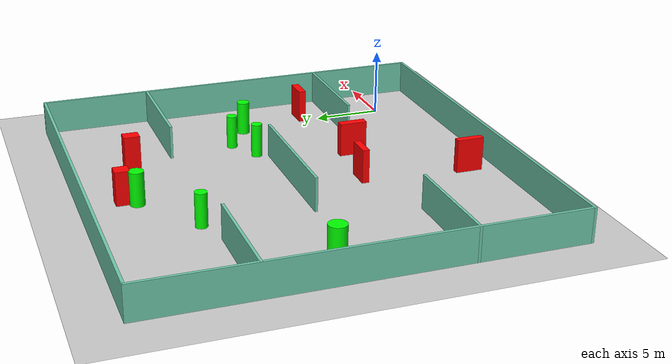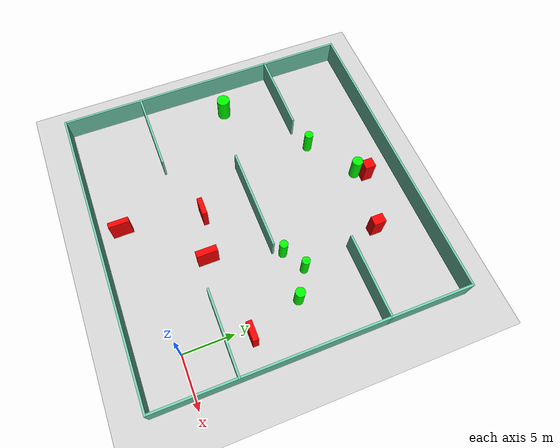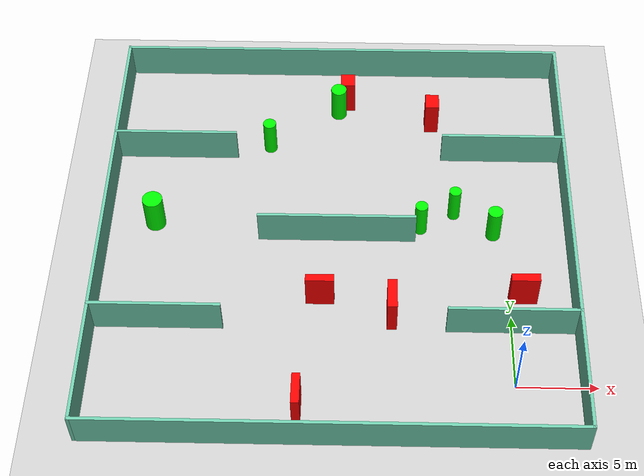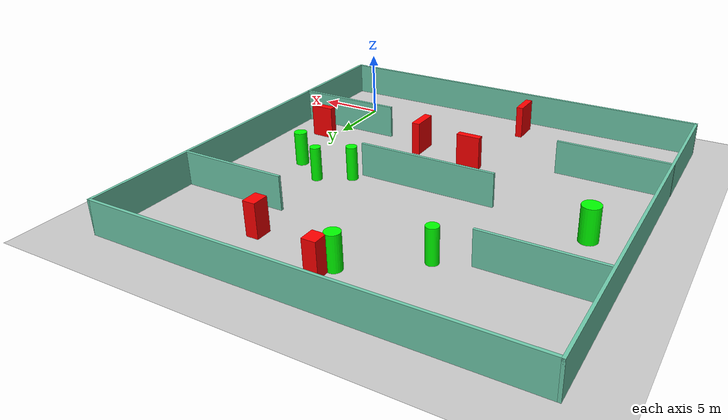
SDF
<sdf version="1.7">
 <world name="default">
  <light name="sun" type="directional">
   <pose>0 0 10 0 -0 0</pose>
   <diffuse>0.8 0.8 0.8 1</diffuse>
   <specular>0.2 0.2 0.2 1</specular>
   <attenuation>
    <range>1000</range>
    <constant>0.9</constant>
    <linear>0.01</linear>
    <quadratic>0.001</quadratic>
   </attenuation>
   <direction>-0.5 0.1 -0.9</direction>
   <spot><inner_angle>0</inner_angle><outer_angle>0</outer_angle><falloff>0</falloff></spot>
  </light>
  <model name="ground_plane">
   <static>1</static>
   <link name="link">
    <collision name="collision">
     <geometry><plane><normal>0 0 1</normal><size>100 100</size></plane></geometry>
     <surface>
      <contact><collide_bitmask>65535</collide_bitmask></contact>
      <friction><ode><mu>100</mu><mu2>50</mu2></ode></friction>
     </surface>
    </collision>
    <visual name="visual">
     <cast_shadows>0</cast_shadows>
     <geometry><plane><normal>0 0 1</normal><size>100 100</size></plane></geometry>
     <material>
      <script><uri>file://media/materials/scripts/gazebo.material</uri><name>Gazebo/Grey</name></script>
     </material>
    </visual>
   </link>
  </model>
  <gravity>0 0 -9.8</gravity>
  <magnetic_field>6e-06 2.3e-05 -4.2e-05</magnetic_field>
  <atmosphere type="adiabatic"/>
  <physics type="ode">
   <max_step_size>0.001</max_step_size>
   <real_time_factor>1</real_time_factor>
   <real_time_update_rate>1000</real_time_update_rate>
  </physics>
  <scene><ambient>0.4 0.4 0.4 1</ambient><background>0.7 0.7 0.7 1</background><shadows>1</shadows></scene>
  <spherical_coordinates>
   <surface_model>EARTH_WGS84</surface_model>
   <latitude_deg>0</latitude_deg>
   <longitude_deg>0</longitude_deg>
   <elevation>0</elevation>
   <heading_deg>0</heading_deg>
  </spherical_coordinates>
  <model name="my_base_walls">
   <link name="Wall_10">
    <collision name="Wall_10_Collision">
     <geometry><box><size>8.2 0.2 2.5</size></box></geometry>
     <pose>0 0 1.25 0 -0 0</pose>
    </collision>
    <visual name="Wall_10_Visual">
     <pose>0 0 1.25 0 -0 0</pose>
     <geometry><box><size>8.2 0.2 2.5</size></box></geometry>
     <material>
      <script><uri>file://media/materials/scripts/gazebo.material</uri><name>Gazebo/Grey</name></script>
      <ambient>0.435294 0.796078 0.67451 1</ambient>
     </material>
     <meta><layer>0</layer></meta>
    </visual>
    <pose>-11 -7 0 0 -0 0</pose>
   </link>
   <link name="Wall_12">
    <collision name="Wall_12_Collision">
     <geometry><box><size>8.2 0.2 2.5</size></box></geometry>
     <pose>0 0 1.25 0 -0 0</pose>
    </collision>
    <visual name="Wall_12_Visual">
     <pose>0 0 1.25 0 -0 0</pose>
     <geometry><box><size>8.2 0.2 2.5</size></box></geometry>
     <material>
      <script><uri>file://media/materials/scripts/gazebo.material</uri><name>Gazebo/Grey</name></script>
      <ambient>0.435294 0.796078 0.67451 1</ambient>
     </material>
     <meta><layer>0</layer></meta>
    </visual>
    <pose>-11 7 0 0 -0 0</pose>
   </link>
   <link name="Wall_14">
    <collision name="Wall_14_Collision">
     <geometry><box><size>8.2 0.2 2.5</size></box></geometry>
     <pose>0 0 1.25 0 -0 0</pose>
    </collision>
    <visual name="Wall_14_Visual">
     <pose>0 0 1.25 0 -0 0</pose>
     <geometry><box><size>8.2 0.2 2.5</size></box></geometry>
     <material>
      <script><uri>file://media/materials/scripts/gazebo.material</uri><name>Gazebo/Grey</name></script>
      <ambient>0.435294 0.796078 0.67451 1</ambient>
     </material>
     <meta><layer>0</layer></meta>
    </visual>
    <pose>11 7 0 0 -0 3.14159</pose>
   </link>
   <link name="Wall_16">
    <collision name="Wall_16_Collision">
     <geometry><box><size>10.2 0.2 2.5</size></box></geometry>
     <pose>0 0 1.25 0 -0 0</pose>
    </collision>
    <visual name="Wall_16_Visual">
     <pose>0 0 1.25 0 -0 0</pose>
     <geometry><box><size>10.2 0.2 2.5</size></box></geometry>
     <material>
      <script><uri>file://media/materials/scripts/gazebo.material</uri><name>Gazebo/Grey</name></script>
      <ambient>0.435294 0.796078 0.67451 1</ambient>
     </material>
     <meta><layer>0</layer></meta>
    </visual>
    <pose>0 0 0 0 -0 3.14159</pose>
   </link>
   <link name="Wall_2">
    <collision name="Wall_2_Collision">
     <geometry><box><size>30.2 0.2 2.5</size></box></geometry>
     <pose>0 0 1.25 0 -0 0</pose>
    </collision>
    <visual name="Wall_2_Visual">
     <pose>0 0 1.25 0 -0 0</pose>
     <geometry><box><size>30.2 0.2 2.5</size></box></geometry>
     <material>
      <script><uri>file://media/materials/scripts/gazebo.material</uri><name>Gazebo/Grey</name></script>
      <ambient>0.435294 0.796078 0.67451 1</ambient>
     </material>
     <meta><layer>0</layer></meta>
    </visual>
    <pose>0 -15 0 0 -0 3.14159</pose>
   </link>
   <link name="Wall_3">
    <collision name="Wall_3_Collision">
     <geometry><box><size>30.2 0.2 2.5</size></box></geometry>
     <pose>0 0 1.25 0 -0 0</pose>
    </collision>
    <visual name="Wall_3_Visual">
     <pose>0 0 1.25 0 -0 0</pose>
     <geometry><box><size>30.2 0.2 2.5</size></box></geometry>
     <material>
      <script><uri>file://media/materials/scripts/gazebo.material</uri><name>Gazebo/Grey</name></script>
      <ambient>0.435294 0.796078 0.67451 1</ambient>
     </material>
     <meta><layer>0</layer></meta>
    </visual>
    <pose>-15 0 0 0 -0 1.5708</pose>
   </link>
   <link name="Wall_4">
    <collision name="Wall_4_Collision">
     <geometry><box><size>30.2 0.2 2.5</size></box></geometry>
     <pose>0 0 1.25 0 -0 0</pose>
    </collision>
    <visual name="Wall_4_Visual">
     <pose>0 0 1.25 0 -0 0</pose>
     <geometry><box><size>30.2 0.2 2.5</size></box></geometry>
     <material>
      <script><uri>file://media/materials/scripts/gazebo.material</uri><name>Gazebo/Grey</name></script>
      <ambient>0.435294 0.796078 0.67451 1</ambient>
     </material>
     <meta><layer>0</layer></meta>
    </visual>
    <pose>0 15 0 0 -0 0</pose>
   </link>
   <link name="Wall_6">
    <collision name="Wall_6_Collision">
     <geometry><box><size>30.2 0.2 2.5</size></box></geometry>
     <pose>0 0 1.25 0 -0 0</pose>
    </collision>
    <visual name="Wall_6_Visual">
     <pose>0 0 1.25 0 -0 0</pose>
     <geometry><box><size>30.2 0.2 2.5</size></box></geometry>
     <material>
      <script><uri>file://media/materials/scripts/gazebo.material</uri><name>Gazebo/Grey</name></script>
      <ambient>0.435294 0.796078 0.67451 1</ambient>
     </material>
     <meta><layer>0</layer></meta>
    </visual>
    <pose>15 0 0 0 -0 1.5708</pose>
   </link>
   <link name="Wall_8">
    <collision name="Wall_8_Collision">
     <geometry><box><size>8.2 0.2 2.5</size></box></geometry>
     <pose>0 0 1.25 0 -0 0</pose>
    </collision>
    <visual name="Wall_8_Visual">
     <pose>0 0 1.25 0 -0 0</pose>
     <geometry><box><size>8.2 0.2 2.5</size></box></geometry>
     <material>
      <script><uri>file://media/materials/scripts/gazebo.material</uri><name>Gazebo/Grey</name></script>
      <ambient>0.435294 0.796078 0.67451 1</ambient>
     </material>
     <meta><layer>0</layer></meta>
    </visual>
    <pose>11 -7 0 0 -0 3.14159</pose>
   </link>
   <static>1</static>
   <pose>-11 11 0 0 -0 0</pose>
  </model>
  <model name="cylinder1">
   <static>1</static>
   <link name="link">
    <inertial>
     <mass>1</mass>
     <inertia><ixx>0.5</ixx><ixy>0</ixy><ixz>0</ixz><iyy>0.5</iyy><iyz>0</iyz><izz>1</izz></inertia>
    </inertial>
    <collision name="collision">
     <geometry><cylinder><radius>0.4704371128499396</radius><length>2.5</length></cylinder></geometry>
    </collision>
    <visual name="visual">
     <geometry><cylinder><radius>0.4704371128499396</radius><length>2.5</length></cylinder></geometry>
     <material>
      <ambient>0 1 0 1</ambient>
      <diffuse>0 1 0 1</diffuse>
      <specular>0.1 0.1 0.1 1</specular>
      <emissive>0 0 0 0</emissive>
     </material>
    </visual>
   </link>
   <pose>-0.8314737111635253 11.494237260394634 1.25 0 0 0</pose>
  </model>
  <model name="cylinder2">
   <static>1</static>
   <link name="link">
    <inertial>
     <mass>1</mass>
     <inertia><ixx>0.5</ixx><ixy>0</ixy><ixz>0</ixz><iyy>0.5</iyy><iyz>0</iyz><izz>1</izz></inertia>
    </inertial>
    <collision name="collision">
     <geometry><cylinder><radius>0.4054571002132763</radius><length>2.5</length></cylinder></geometry>
    </collision>
    <visual name="visual">
     <geometry><cylinder><radius>0.4054571002132763</radius><length>2.5</length></cylinder></geometry>
     <material>
      <ambient>0 1 0 1</ambient>
      <diffuse>0 1 0 1</diffuse>
      <specular>0.1 0.1 0.1 1</specular>
      <emissive>0 0 0 0</emissive>
     </material>
    </visual>
   </link>
   <pose>-5.554536557897574 11.877607952222423 1.25 0 0 0</pose>
  </model>
  <model name="cylinder3">
   <static>1</static>
   <link name="link">
    <inertial>
     <mass>1</mass>
     <inertia><ixx>0.5</ixx><ixy>0</ixy><ixz>0</ixz><iyy>0.5</iyy><iyz>0</iyz><izz>1</izz></inertia>
    </inertial>
    <collision name="collision">
     <geometry><cylinder><radius>0.390100442343191</radius><length>2.5</length></cylinder></geometry>
    </collision>
    <visual name="visual">
     <geometry><cylinder><radius>0.390100442343191</radius><length>2.5</length></cylinder></geometry>
     <material>
      <ambient>0 1 0 1</ambient>
      <diffuse>0 1 0 1</diffuse>
      <specular>0.1 0.1 0.1 1</specular>
      <emissive>0 0 0 0</emissive>
     </material>
    </visual>
   </link>
   <pose>-3.3547870679539535 13.142305692547808 1.25 0 0 0</pose>
  </model>
  <model name="cylinder4">
   <static>1</static>
   <link name="link">
    <inertial>
     <mass>1</mass>
     <inertia><ixx>0.5</ixx><ixy>0</ixy><ixz>0</ixz><iyy>0.5</iyy><iyz>0</iyz><izz>1</izz></inertia>
    </inertial>
    <collision name="collision">
     <geometry><cylinder><radius>0.6513073889476737</radius><length>2.5</length></cylinder></geometry>
    </collision>
    <visual name="visual">
     <geometry><cylinder><radius>0.6513073889476737</radius><length>2.5</length></cylinder></geometry>
     <material>
      <ambient>0 1 0 1</ambient>
      <diffuse>0 1 0 1</diffuse>
      <specular>0.1 0.1 0.1 1</specular>
      <emissive>0 0 0 0</emissive>
     </material>
    </visual>
   </link>
   <pose>-22.930072153434274 12.120486263667429 1.25 0 0 0</pose>
  </model>
  <model name="cylinder5">
   <static>1</static>
   <link name="link">
    <inertial>
     <mass>1</mass>
     <inertia><ixx>0.5</ixx><ixy>0</ixy><ixz>0</ixz><iyy>0.5</iyy><iyz>0</iyz><izz>1</izz></inertia>
    </inertial>
    <collision name="collision">
     <geometry><cylinder><radius>0.5264605806642556</radius><length>2.5</length></cylinder></geometry>
    </collision>
    <visual name="visual">
     <geometry><cylinder><radius>0.5264605806642556</radius><length>2.5</length></cylinder></geometry>
     <material>
      <ambient>0 1 0 1</ambient>
      <diffuse>0 1 0 1</diffuse>
      <specular>0.1 0.1 0.1 1</specular>
      <emissive>0 0 0 0</emissive>
     </material>
    </visual>
   </link>
   <pose>-11.113495241574466 22.088979992121065 1.25 0 0 0</pose>
  </model>
  <model name="cylinder6">
   <static>1</static>
   <link name="link">
    <inertial>
     <mass>1</mass>
     <inertia><ixx>0.5</ixx><ixy>0</ixy><ixz>0</ixz><iyy>0.5</iyy><iyz>0</iyz><izz>1</izz></inertia>
    </inertial>
    <collision name="collision">
     <geometry><cylinder><radius>0.43374437318689996</radius><length>2.5</length></cylinder></geometry>
    </collision>
    <visual name="visual">
     <geometry><cylinder><radius>0.43374437318689996</radius><length>2.5</length></cylinder></geometry>
     <material>
      <ambient>0 1 0 1</ambient>
      <diffuse>0 1 0 1</diffuse>
      <specular>0.1 0.1 0.1 1</specular>
      <emissive>0 0 0 0</emissive>
     </material>
    </visual>
   </link>
   <pose>-15.725196893931885 18.83806131077697 1.25 0 0 0</pose>
  </model>
  <model name="box1">
   <static>1</static>
   <link name="link">
    <inertial>
     <mass>1</mass>
     <inertia><ixx>0.083</ixx><ixy>0</ixy><ixz>0</ixz><iyy>0.083</iyy><iyz>0</iyz><izz>0.083</izz></inertia>
    </inertial>
    <collision name="collision">
     <geometry><box><size>1.7953350428391304 0.5492067317717578 2.5</size></box></geometry>
    </collision>
    <visual name="visual">
     <geometry><box><size>1.7953350428391304 0.5492067317717578 2.5</size></box></geometry>
     <material>
      <ambient>1 0 0 1</ambient>
      <diffuse>1 0 0 1</diffuse>
      <specular>0.1 0.1 0.1 1</specular>
      <emissive>0 0 0 0</emissive>
     </material>
    </visual>
    <sensor name="my_contact" type="contact">
     <contact><collision>box_collision</collision><topic>__default_topic__</topic></contact>
    </sensor>
   </link>
   <pose>0.7901519396583119 6.362253576555936 1.25 0 0 0</pose>
  </model>
  <model name="box2">
   <static>1</static>
   <link name="link">
    <inertial>
     <mass>1</mass>
     <inertia><ixx>0.083</ixx><ixy>0</ixy><ixz>0</ixz><iyy>0.083</iyy><iyz>0</iyz><izz>0.083</izz></inertia>
    </inertial>
    <collision name="collision">
     <geometry><box><size>0.5099764379183007 1.9982868540459031 2.5</size></box></geometry>
    </collision>
    <visual name="visual">
     <geometry><box><size>0.5099764379183007 1.9982868540459031 2.5</size></box></geometry>
     <material>
      <ambient>1 0 0 1</ambient>
      <diffuse>1 0 0 1</diffuse>
      <specular>0.1 0.1 0.1 1</specular>
      <emissive>0 0 0 0</emissive>
     </material>
    </visual>
    <sensor name="my_contact" type="contact">
     <contact><collision>box_collision</collision><topic>__default_topic__</topic></contact>
    </sensor>
   </link>
   <pose>-13.099802023321327 -1.7572786208730937 1.25 0 0 0</pose>
  </model>
  <model name="box3">
   <static>1</static>
   <link name="link">
    <inertial>
     <mass>1</mass>
     <inertia><ixx>0.083</ixx><ixy>0</ixy><ixz>0</ixz><iyy>0.083</iyy><iyz>0</iyz><izz>0.083</izz></inertia>
    </inertial>
    <collision name="collision">
     <geometry><box><size>0.916574209787427 1.1832560516623336 2.5</size></box></geometry>
    </collision>
    <visual name="visual">
     <geometry><box><size>0.916574209787427 1.1832560516623336 2.5</size></box></geometry>
     <material>
      <ambient>1 0 0 1</ambient>
      <diffuse>1 0 0 1</diffuse>
      <specular>0.1 0.1 0.1 1</specular>
      <emissive>0 0 0 0</emissive>
     </material>
    </visual>
    <sensor name="my_contact" type="contact">
     <contact><collision>box_collision</collision><topic>__default_topic__</topic></contact>
    </sensor>
   </link>
   <pose>-4.7007431696523305 21.11485808308948 1.25 0 0 0</pose>
  </model>
  <model name="box4">
   <static>1</static>
   <link name="link">
    <inertial>
     <mass>1</mass>
     <inertia><ixx>0.083</ixx><ixy>0</ixy><ixz>0</ixz><iyy>0.083</iyy><iyz>0</iyz><izz>0.083</izz></inertia>
    </inertial>
    <collision name="collision">
     <geometry><box><size>0.9846435187138307 1.0503644266819891 2.5</size></box></geometry>
    </collision>
    <visual name="visual">
     <geometry><box><size>0.9846435187138307 1.0503644266819891 2.5</size></box></geometry>
     <material>
      <ambient>1 0 0 1</ambient>
      <diffuse>1 0 0 1</diffuse>
      <specular>0.1 0.1 0.1 1</specular>
      <emissive>0 0 0 0</emissive>
     </material>
    </visual>
    <sensor name="my_contact" type="contact">
     <contact><collision>box_collision</collision><topic>__default_topic__</topic></contact>
    </sensor>
   </link>
   <pose>-10.50076951560714 23.00357924712753 1.25 0 0 0</pose>
  </model>
  <model name="box5">
   <static>1</static>
   <link name="link">
    <inertial>
     <mass>1</mass>
     <inertia><ixx>0.083</ixx><ixy>0</ixy><ixz>0</ixz><iyy>0.083</iyy><iyz>0</iyz><izz>0.083</izz></inertia>
    </inertial>
    <collision name="collision">
     <geometry><box><size>0.6158220512850129 2.034307029654367 2.5</size></box></geometry>
    </collision>
    <visual name="visual">
     <geometry><box><size>0.6158220512850129 2.034307029654367 2.5</size></box></geometry>
     <material>
      <ambient>1 0 0 1</ambient>
      <diffuse>1 0 0 1</diffuse>
      <specular>0.1 0.1 0.1 1</specular>
      <emissive>0 0 0 0</emissive>
     </material>
    </visual>
    <sensor name="my_contact" type="contact">
     <contact><collision>box_collision</collision><topic>__default_topic__</topic></contact>
    </sensor>
   </link>
   <pose>-7.439181184573119 5.032644975756931 1.25 0 0 0</pose>
  </model>
  <model name="box6">
   <static>1</static>
   <link name="link">
    <inertial>
     <mass>1</mass>
     <inertia><ixx>0.083</ixx><ixy>0</ixy><ixz>0</ixz><iyy>0.083</iyy><iyz>0</iyz><izz>0.083</izz></inertia>
    </inertial>
    <collision name="collision">
     <geometry><box><size>1.7912807894547058 0.5068813945220496 2.5</size></box></geometry>
    </collision>
    <visual name="visual">
     <geometry><box><size>1.7912807894547058 0.5068813945220496 2.5</size></box></geometry>
     <material>
      <ambient>1 0 0 1</ambient>
      <diffuse>1 0 0 1</diffuse>
      <specular>0.1 0.1 0.1 1</specular>
      <emissive>0 0 0 0</emissive>
     </material>
    </visual>
    <sensor name="my_contact" type="contact">
     <contact><collision>box_collision</collision><topic>__default_topic__</topic></contact>
    </sensor>
   </link>
   <pose>-11.944383572091528 6.104117478599882 1.25 0 0 0</pose>
  </model>
 </world>
</sdf>
